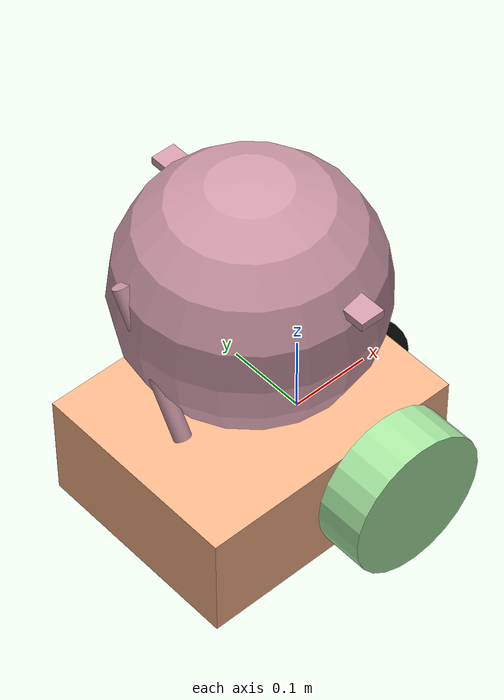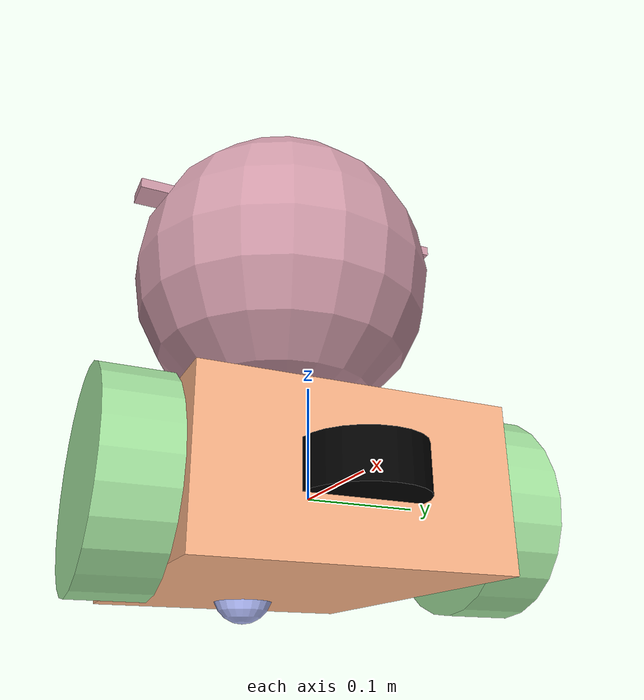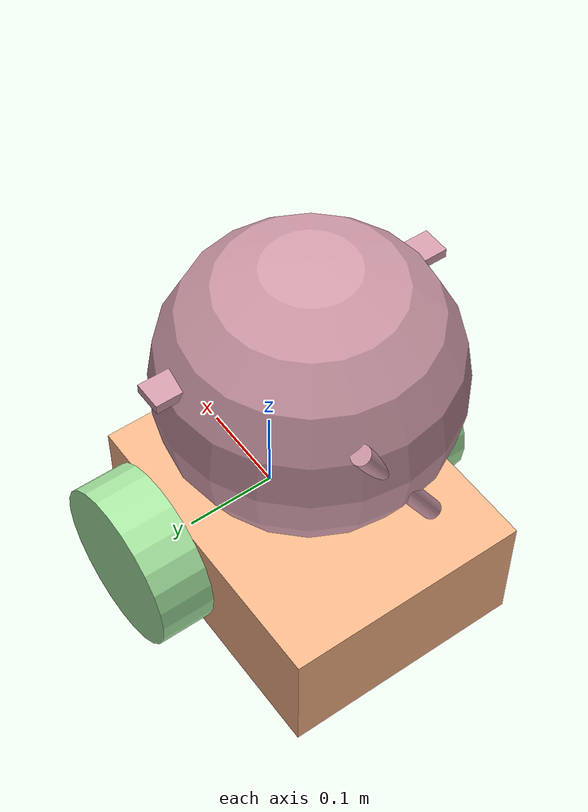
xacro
Ниже полный вариант `robot.urdf.xacro` в стиле «питомец‑помощник», сделанный на основе твоего второго файла (`robot.urdf copy.xacro`): база и лидар остаются, добавлены голова‑сфера, ушки, хвост и «мордочка» (глаза‑экраны и рот).[1][2][3]

```xml
<?xml version="1.0"?>
<robot name="robot" xmlns:xacro="http://ros.org/wiki/xacro">

  <xacro:include filename="$(find robot_description)/urdf/gazebo.urdf.xacro" />

  <!-- -------- ПАРАМЕТРЫ -------- -->
  <xacro:property name="chassis_length" value="0.335" />
  <xacro:property name="chassis_width"  value="0.265" />
  <xacro:property name="chassis_height" value="0.138" />

  <xacro:property name="wheel_radius"   value="${chassis_height * 1.3 / 2}" />
  <xacro:property name="wheel_thickness" value="0.06" />
  <xacro:property name="wheel_mass"     value="0.05" />
  <xacro:property name="wheel_offset_x" value="${chassis_length / 2 + 0.2 * chassis_length}" />
  <xacro:property name="wheel_offset_y" value="${chassis_width / 2 + wheel_thickness / 2}" />
  <xacro:property name="wheel_offset_z" value="${chassis_height / 2.0}" />

  <xacro:property name="caster_wheel_radius" value="0.03" />
  <xacro:property name="caster_wheel_mass"   value="0.01" />
  <xacro:property name="caster_wheel_offset_x" value="0.075" />
  <xacro:property name="caster_wheel_offset_z"
                  value="${wheel_offset_z - wheel_radius + caster_wheel_radius}" />

  <xacro:property name="mass" value="1.0" />

  <xacro:property name="laser_radius" value="0.05" />
  <xacro:property name="laser_length" value="0.04" />

  <!-- -------- МАТЕРИАЛЫ -------- -->
  <material name="white">
    <color rgba="0.71 0.75 1 1" />
  </material>

  <material name="rose">
    <color rgba="0.812 0.604 0.659 1" />
  </material>

  <material name="orange">
    <color rgba="0.98 0.7 0.53 0.95" />
  </material>

  <material name="blue">
    <color rgba="0.65 0.9 0.63 1" />
  </material>

  <material name="black">
    <color rgba="0 0 0 1" />
  </material>

  <material name="red">
    <color rgba="1 0 0 1" />
  </material>

  <!-- -------- БАЗОВЫЕ ССЫЛКИ -------- -->
  <link name="base_link"/>
  <link name="base_footprint"/>

  <joint name="base_footprint_joint" type="fixed">
    <parent link="base_link" />
    <child link="base_footprint" />
    <origin xyz="0 0 -0.138" rpy="0 0 0" />
  </joint>

  <!-- -------- КОРПУС -------- -->
  <joint name="chassis_joint" type="fixed">
    <parent link="base_link" />
    <child link="chassis" />
    <origin xyz="${-wheel_offset_x} 0 ${-wheel_offset_z}" />
  </joint>

  <link name="chassis">
    <inertial>
      <origin xyz="${chassis_length/2} 0 ${chassis_height/2}" rpy="0 0 0" />
      <mass value="${mass}" />
      <inertia ixx="${(1/12) * mass * (chassis_width*chassis_width+chassis_height*chassis_height)}"
               ixy="0.0" ixz="0.0"
               iyy="${(1/12) * mass * (chassis_length*chassis_length+chassis_height*chassis_height)}"
               iyz="0.0"
               izz="${(1/12) * mass * (chassis_length*chassis_length+chassis_width*chassis_width)}" />
    </inertial>
    <visual>
      <origin xyz="${chassis_length/2} 0 ${chassis_height/2}" />
      <geometry>
        <box size="${chassis_length} ${chassis_width} ${chassis_height}" />
      </geometry>
      <material name="orange" />
    </visual>
    <collision>
      <origin xyz="${chassis_length/2} 0 ${chassis_height/2}" />
      <geometry>
        <box size="${chassis_length} ${chassis_width} ${chassis_height}" />
      </geometry>
    </collision>
  </link>

  <gazebo reference="chassis">
    <material>Gazebo/Orange</material>
  </gazebo>

  <!-- -------- ВЕДУЩИЕ КОЛЁСА -------- -->
  <joint name="left_wheel_joint" type="continuous">
    <parent link="base_link" />
    <child link="left_wheel" />
    <origin xyz="0 ${wheel_offset_y} 0" rpy="-${pi/2} 0 0" />
    <axis xyz="0 0 1" />
  </joint>

  <link name="left_wheel">
    <visual>
      <geometry>
        <cylinder radius="${wheel_radius}" length="${wheel_thickness}" />
      </geometry>
      <material name="blue" />
    </visual>
    <collision>
      <geometry>
        <sphere radius="${wheel_radius}" />
      </geometry>
    </collision>
    <inertial>
      <origin xyz="0 0 0" rpy="0 0 0" />
      <mass value="${wheel_mass}" />
      <inertia ixx="${(1/12) * wheel_mass * (3*wheel_radius*wheel_radius + wheel_thickness*wheel_thickness)}"
               ixy="0.0" ixz="0.0"
               iyy="${(1/12) * wheel_mass * (3*wheel_radius*wheel_radius + wheel_thickness*wheel_thickness)}"
               iyz="0.0"
               izz="${(1/2) * wheel_mass * (wheel_radius*wheel_radius)}" />
    </inertial>
  </link>

  <gazebo reference="left_wheel">
    <material>Gazebo/Blue</material>
  </gazebo>

  <joint name="right_wheel_joint" type="continuous">
    <parent link="base_link" />
    <child link="right_wheel" />
    <origin xyz="0 ${-wheel_offset_y} 0" rpy="${pi/2} 0 0" />
    <axis xyz="0 0 -1" />
  </joint>

  <link name="right_wheel">
    <visual>
      <geometry>
        <cylinder radius="${wheel_radius}" length="${wheel_thickness}" />
      </geometry>
      <material name="blue" />
    </visual>
    <collision>
      <geometry>
        <sphere radius="${wheel_radius}" />
      </geometry>
    </collision>
    <inertial>
      <origin xyz="0 0 0" rpy="0 0 0" />
      <mass value="${wheel_mass}" />
      <inertia ixx="${(1/12) * wheel_mass * (3*wheel_radius*wheel_radius + wheel_thickness*wheel_thickness)}"
               ixy="0.0" ixz="0.0"
               iyy="${(1/12) * wheel_mass * (3*wheel_radius*wheel_radius + wheel_thickness*wheel_thickness)}"
               iyz="0.0"
               izz="${(1/2) * wheel_mass * (wheel_radius*wheel_radius)}" />
    </inertial>
  </link>

  <gazebo reference="right_wheel">
    <material>Gazebo/Blue</material>
  </gazebo>

  <!-- -------- ОПОРНОЕ КОЛЕСО -------- -->
  <joint name="caster_wheel_joint" type="fixed">
    <parent link="chassis" />
    <child link="caster_wheel" />
    <origin xyz="${caster_wheel_offset_x} 0 ${caster_wheel_offset_z}" />
  </joint>

  <link name="caster_wheel">
    <visual>
      <geometry>
        <sphere radius="${caster_wheel_radius}" />
      </geometry>
      <material name="white" />
    </visual>
    <collision>
      <geometry>
        <sphere radius="${caster_wheel_radius}" />
      </geometry>
    </collision>
    <inertial>
      <origin xyz="0 0 0" rpy="0 0 0" />
      <mass value="${caster_wheel_mass}" />
      <inertia ixx="${(2/5) * caster_wheel_mass * (caster_wheel_radius*caster_wheel_radius)}"
               ixy="0.0" ixz="0.0"
               iyy="${(2/5) * caster_wheel_mass * (caster_wheel_radius*caster_wheel_radius)}"
               iyz="0.0"
               izz="${(2/5) * caster_wheel_mass * (caster_wheel_radius*caster_wheel_radius)}" />
    </inertial>
  </link>

  <gazebo reference="caster_wheel">
    <material>Gazebo/White</material>
    <mu1 value="0.001" />
    <mu2 value="0.001" />
  </gazebo>

  <!-- ========= ВНЕШНОСТЬ ПИТОМЦА ========= -->

  <!-- Голова-сфера -->
  <link name="body_sphere">
    <visual>
      <origin xyz="${chassis_length/2} 0 ${chassis_height + 0.17}" rpy="0 0 0"/>
      <geometry>
        <sphere radius="0.15"/>
      </geometry>
      <material name="rose"/>
    </visual>
    <collision>
      <origin xyz="${chassis_length/2} 0 ${chassis_height + 0.17}" rpy="0 0 0"/>
      <geometry>
        <sphere radius="0.15"/>
      </geometry>
    </collision>
    <inertial>
      <mass value="0.5"/>
      <origin xyz="${chassis_length/2} 0 ${chassis_height + 0.17}" rpy="0 0 0"/>
      <inertia ixx="0.02" ixy="0" ixz="0" iyy="0.02" iyz="0" izz="0.02"/>
    </inertial>
  </link>

  <joint name="body_sphere_joint" type="fixed">
    <parent link="chassis"/>
    <child link="body_sphere"/>
    <origin xyz="0 0 0" rpy="0 0 0"/>
  </joint>

  <gazebo reference="body_sphere">
    <material>Gazebo/Pink</material>
  </gazebo>

  <!-- Ушки -->
  <link name="ear_left">
    <visual>
      <origin xyz="${chassis_length/2 + 0.02} 0.12 ${chassis_height + 0.23}" rpy="0 0 0"/>
      <geometry>
        <box size="0.03 0.08 0.01"/>
      </geometry>
      <material name="rose"/>
    </visual>
  </link>

  <joint name="ear_left_joint" type="fixed">
    <parent link="body_sphere"/>
    <child link="ear_left"/>
    <origin xyz="0 0 0" rpy="0 0 0"/>
  </joint>

  <link name="ear_right">
    <visual>
      <origin xyz="${chassis_length/2 + 0.02} -0.12 ${chassis_height + 0.23}" rpy="0 0 0"/>
      <geometry>
        <box size="0.03 0.08 0.01"/>
      </geometry>
      <material name="rose"/>
    </visual>
  </link>

  <joint name="ear_right_joint" type="fixed">
    <parent link="body_sphere"/>
    <child link="ear_right"/>
    <origin xyz="0 0 0" rpy="0 0 0"/>
  </joint>

  <!-- Хвост -->
  <link name="tail">
    <visual>
      <origin xyz="${chassis_length*0.1} 0 ${chassis_height + 0.15}" rpy="${-pi/6} 0 0"/>
      <geometry>
        <cylinder radius="0.01" length="0.18"/>
      </geometry>
      <material name="rose"/>
    </visual>
  </link>

  <joint name="tail_joint" type="fixed">
    <parent link="chassis"/>
    <child link="tail"/>
    <origin xyz="0 0 0" rpy="0 0 0"/>
  </joint>

  <!-- Глаза-экраны -->
  <link name="eye_screen_left">
    <visual>
      <origin xyz="${chassis_length - 0.02} 0.05 ${chassis_height*0.7}" rpy="0 ${pi/2} 0"/>
      <geometry>
        <box size="0.02 0.05 0.03"/>
      </geometry>
      <material name="white"/>
    </visual>
  </link>

  <joint name="eye_screen_left_joint" type="fixed">
    <parent link="chassis"/>
    <child link="eye_screen_left"/>
    <origin xyz="0 0 0" rpy="0 0 0"/>
  </joint>

  <link name="eye_screen_right">
    <visual>
      <origin xyz="${chassis_length - 0.02} -0.05 ${chassis_height*0.7}" rpy="0 ${pi/2} 0"/>
      <geometry>
        <box size="0.02 0.05 0.03"/>
      </geometry>
      <material name="white"/>
    </visual>
  </link>

  <joint name="eye_screen_right_joint" type="fixed">
    <parent link="chassis"/>
    <child link="eye_screen_right"/>
    <origin xyz="0 0 0" rpy="0 0 0"/>
  </joint>

  <!-- Рот -->
  <link name="mouth_screen">
    <visual>
      <origin xyz="${chassis_length - 0.021} 0 ${chassis_height*0.45}" rpy="0 ${pi/2} 0"/>
      <geometry>
        <box size="0.018 0.08 0.015"/>
      </geometry>
      <material name="black"/>
    </visual>
  </link>

  <joint name="mouth_screen_joint" type="fixed">
    <parent link="chassis"/>
    <child link="mouth_screen"/>
    <origin xyz="0 0 0" rpy="0 0 0"/>
  </joint>

  <!-- ========= ЛИДАР (НОС) ========= -->
  <link name="laser_frame">
    <visual>
      <geometry>
        <cylinder radius="${laser_radius}" length="${laser_length}" />
      </geometry>
      <material name="black" />
    </visual>
    <collision>
      <geometry>
        <cylinder radius="${laser_radius}" length="${laser_length}" />
      </geometry>
    </collision>
    <inertial>
      <mass value="0.1" />
      <inertia ixx="1e-3" ixy="0" ixz="0" iyy="1e-3" iyz="0" izz="1e-3" />
    </inertial>
  </link>

  <joint name="laser_joint" type="fixed">
    <parent link="chassis" />
    <child link="laser_frame" />
    <origin xyz="${chassis_length} 0 ${chassis_height/2}" rpy="0 0 0" />
  </joint>

  <gazebo reference="laser_frame">
    <sensor name="laser_frame" type="gpu_lidar">
      <topic>scan</topic>
      <pose relative_to="laser_frame">0 0 0 0 0 0</pose>
      <update_rate>5</update_rate>
      <ray>
        <scan>
          <horizontal>
            <samples>50</samples>
            <resolution>1</resolution>
            <min_angle>-1.396263</min_angle>
            <max_angle>1.396263</max_angle>
          </horizontal>
          <vertical>
            <samples>20</samples>
            <resolution>1</resolution>
            <min_angle>-0.65</min_angle>
            <max_angle>0.65</max_angle>
          </vertical>
        </scan>
        <range>
          <min>0.08</min>
          <max>10.0</max>
          <resolution>0.01</resolution>
        </range>
      </ray>
      <always_on>1</always_on>
      <visualize>true</visualize>
    </sensor>
  </gazebo>

</robot>
```

Если что‑то «уползёт» в Gazebo/RViz, можно чуть подвигать координаты `origin` у головы, ушей, глаз и хвоста — логика остаётся той же.[3][4]

[1](https://articulatedrobotics.xyz/tutorials/ready-for-ros/urdf/)
[2](http://wiki.ros.org/urdf/XML/link)
[3](http://wiki.ros.org/urdf/Tutorials/Building%20a%20Visual%20Robot%20Model%20with%20URDF%20from%20Scratch)
[4](https://www.youtube.com/watch?v=dZ_CyyEvBE0)
[5](https://answers.ros.org/question/411742)
[6](https://www.youtube.com/watch?v=Nwr4VvJ17uM)
[7](https://www.youtube.com/watch?v=-fMxgG1cPDA)
[8](https://codewithurooj.github.io/my_book/docs/chapter-3-simulation/urdf-sensors)
[9](https://automaticaddison.com/create-and-visualize-a-mobile-robot-with-urdf-ros-2-jazzy/)
[10](https://answers.gazebosim.org/question/13063/)
[11](https://devbisme.github.io/freecad_project_explorer/)
[12](https://www.youtube.com/watch?v=Vbh3--etiwg)
[13](https://stackoverflow.com/questions/76068686/ros2-gpu-lidar-selectively-interact-with-objects-in-gazebo)
[14](https://www.youtube.com/watch?v=LsKL8N5Iwkw)
[15](https://www.youtube.com/watch?v=OAdSxAcel9g)
[16](https://learnbydoing.dev/integrating-a-2d-lidar-into-your-ros-2-robot-model/)
[17](https://articulatedrobotics.xyz/tutorials/mobile-robot/concept-design/concept-urdf/)
[18](https://www.youtube.com/watch?v=mDS_M95MQGA)
[19](https://automaticaddison.com/set-up-lidar-for-a-simulated-mobile-robot-in-ros-2/)
[20](https://classic.gazebosim.org/tutorials/?tut=ros_urdf)
